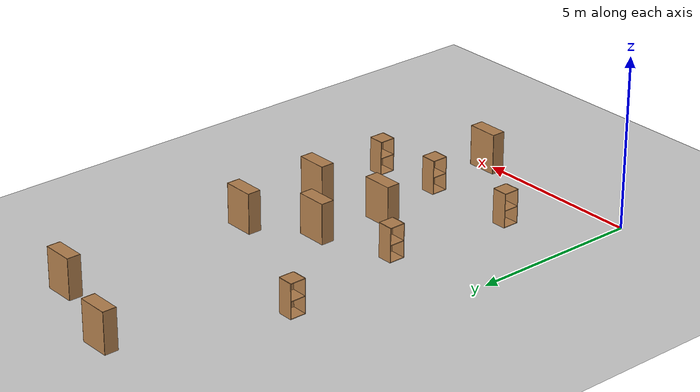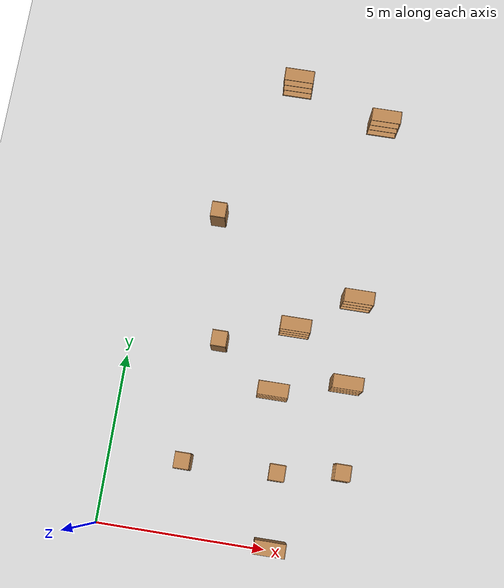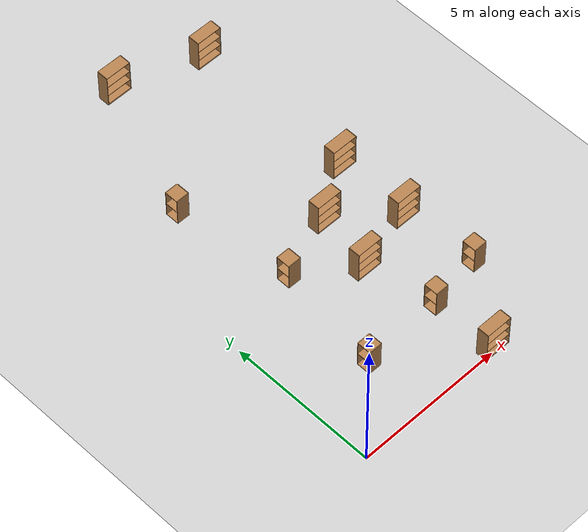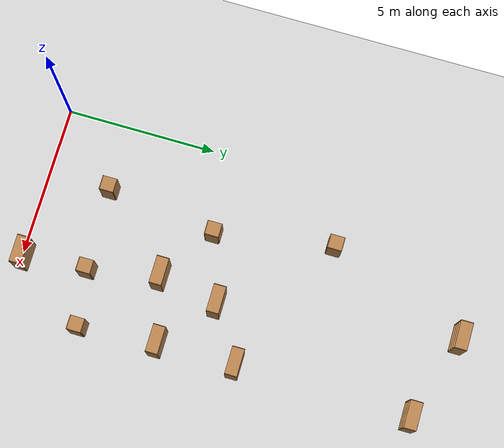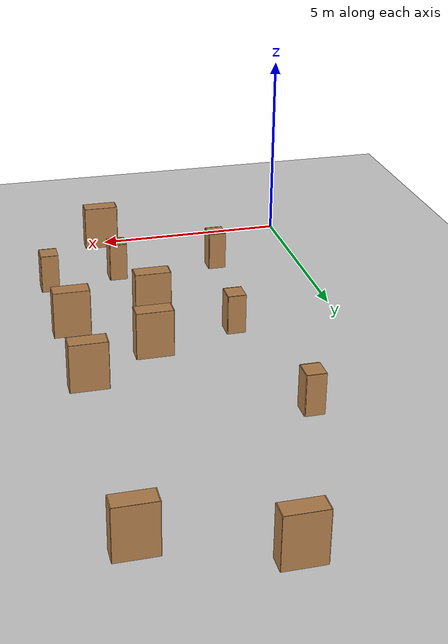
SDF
<sdf version="1.6">
 <world name="default">
  <model name="ground_plane">
   <static>1</static>
   <link name="link">
    <collision name="collision">
     <geometry><plane><normal>0 0 1</normal><size>100 100</size></plane></geometry>
     <surface><friction><ode><mu>100</mu><mu2>50</mu2></ode></friction></surface>
    </collision>
    <visual name="visual">
     <cast_shadows>0</cast_shadows>
     <geometry><plane><normal>0 0 1</normal><size>100 100</size></plane></geometry>
     <material>
      <script><uri>file://media/materials/scripts/gazebo.material</uri><name>Gazebo/Grey</name></script>
     </material>
    </visual>
   </link>
  </model>
  <model name="bookshelf_4">
   <static>1</static>
   <link name="link">
    <inertial><mass>1</mass></inertial>
    <collision name="back">
     <pose>0 0.005 0.6 0 -0 0</pose>
     <geometry><box><size>0.9 0.01 1.2</size></box></geometry>
    </collision>
    <visual name="visual1">
     <pose>0 0.005 0.6 0 -0 0</pose>
     <geometry><box><size>0.9 0.01 1.2</size></box></geometry>
     <material>
      <script><uri>file://media/materials/scripts/gazebo.material</uri><name>Gazebo/Wood</name></script>
     </material>
    </visual>
    <collision name="left_side">
     <pose>0.45 -0.195 0.6 0 -0 0</pose>
     <geometry><box><size>0.02 0.4 1.2</size></box></geometry>
    </collision>
    <visual name="visual2">
     <pose>0.45 -0.195 0.6 0 -0 0</pose>
     <geometry><box><size>0.02 0.4 1.2</size></box></geometry>
     <material>
      <script><uri>file://media/materials/scripts/gazebo.material</uri><name>Gazebo/Wood</name></script>
     </material>
    </visual>
    <collision name="right_side">
     <pose>-0.45 -0.195 0.6 0 -0 0</pose>
     <geometry><box><size>0.02 0.4 1.2</size></box></geometry>
    </collision>
    <visual name="visual3">
     <pose>-0.45 -0.195 0.6 0 -0 0</pose>
     <geometry><box><size>0.02 0.4 1.2</size></box></geometry>
     <material>
      <script><uri>file://media/materials/scripts/gazebo.material</uri><name>Gazebo/Wood</name></script>
     </material>
    </visual>
    <collision name="bottom">
     <pose>0 -0.195 0.03 0 -0 0</pose>
     <geometry><box><size>0.88 0.4 0.06</size></box></geometry>
    </collision>
    <visual name="visual4">
     <pose>0 -0.195 0.03 0 -0 0</pose>
     <geometry><box><size>0.88 0.4 0.06</size></box></geometry>
     <material>
      <script><uri>file://media/materials/scripts/gazebo.material</uri><name>Gazebo/Wood</name></script>
     </material>
    </visual>
    <collision name="top">
     <pose>0 -0.195 1.19 0 -0 0</pose>
     <geometry><box><size>0.88 0.4 0.02</size></box></geometry>
    </collision>
    <visual name="visual5">
     <pose>0 -0.195 1.19 0 -0 0</pose>
     <geometry><box><size>0.88 0.4 0.02</size></box></geometry>
     <material>
      <script><uri>file://media/materials/scripts/gazebo.material</uri><name>Gazebo/Wood</name></script>
     </material>
    </visual>
    <collision name="low_shelf">
     <pose>0 -0.195 0.43 0 -0 0</pose>
     <geometry><box><size>0.88 0.4 0.02</size></box></geometry>
    </collision>
    <visual name="visual6">
     <pose>0 -0.195 0.43 0 -0 0</pose>
     <geometry><box><size>0.88 0.4 0.02</size></box></geometry>
     <material>
      <script><uri>file://media/materials/scripts/gazebo.material</uri><name>Gazebo/Wood</name></script>
     </material>
    </visual>
    <collision name="high_shelf">
     <pose>0 -0.195 0.8 0 -0 0</pose>
     <geometry><box><size>0.88 0.4 0.02</size></box></geometry>
    </collision>
    <visual name="visual7">
     <pose>0 -0.195 0.8 0 -0 0</pose>
     <geometry><box><size>0.88 0.4 0.02</size></box></geometry>
     <material>
      <script><uri>file://media/materials/scripts/gazebo.material</uri><name>Gazebo/Wood</name></script>
     </material>
    </visual>
   </link>
   <pose>3.85039 14.4909 0 0 -0 0</pose>
  </model>
  <model name="bookshelf_5">
   <static>1</static>
   <link name="link">
    <inertial><mass>1</mass></inertial>
    <collision name="back">
     <pose>0 0.005 0.6 0 -0 0</pose>
     <geometry><box><size>0.9 0.01 1.2</size></box></geometry>
    </collision>
    <visual name="visual1">
     <pose>0 0.005 0.6 0 -0 0</pose>
     <geometry><box><size>0.9 0.01 1.2</size></box></geometry>
     <material>
      <script><uri>file://media/materials/scripts/gazebo.material</uri><name>Gazebo/Wood</name></script>
     </material>
    </visual>
    <collision name="left_side">
     <pose>0.45 -0.195 0.6 0 -0 0</pose>
     <geometry><box><size>0.02 0.4 1.2</size></box></geometry>
    </collision>
    <visual name="visual2">
     <pose>0.45 -0.195 0.6 0 -0 0</pose>
     <geometry><box><size>0.02 0.4 1.2</size></box></geometry>
     <material>
      <script><uri>file://media/materials/scripts/gazebo.material</uri><name>Gazebo/Wood</name></script>
     </material>
    </visual>
    <collision name="right_side">
     <pose>-0.45 -0.195 0.6 0 -0 0</pose>
     <geometry><box><size>0.02 0.4 1.2</size></box></geometry>
    </collision>
    <visual name="visual3">
     <pose>-0.45 -0.195 0.6 0 -0 0</pose>
     <geometry><box><size>0.02 0.4 1.2</size></box></geometry>
     <material>
      <script><uri>file://media/materials/scripts/gazebo.material</uri><name>Gazebo/Wood</name></script>
     </material>
    </visual>
    <collision name="bottom">
     <pose>0 -0.195 0.03 0 -0 0</pose>
     <geometry><box><size>0.88 0.4 0.06</size></box></geometry>
    </collision>
    <visual name="visual4">
     <pose>0 -0.195 0.03 0 -0 0</pose>
     <geometry><box><size>0.88 0.4 0.06</size></box></geometry>
     <material>
      <script><uri>file://media/materials/scripts/gazebo.material</uri><name>Gazebo/Wood</name></script>
     </material>
    </visual>
    <collision name="top">
     <pose>0 -0.195 1.19 0 -0 0</pose>
     <geometry><box><size>0.88 0.4 0.02</size></box></geometry>
    </collision>
    <visual name="visual5">
     <pose>0 -0.195 1.19 0 -0 0</pose>
     <geometry><box><size>0.88 0.4 0.02</size></box></geometry>
     <material>
      <script><uri>file://media/materials/scripts/gazebo.material</uri><name>Gazebo/Wood</name></script>
     </material>
    </visual>
    <collision name="low_shelf">
     <pose>0 -0.195 0.43 0 -0 0</pose>
     <geometry><box><size>0.88 0.4 0.02</size></box></geometry>
    </collision>
    <visual name="visual6">
     <pose>0 -0.195 0.43 0 -0 0</pose>
     <geometry><box><size>0.88 0.4 0.02</size></box></geometry>
     <material>
      <script><uri>file://media/materials/scripts/gazebo.material</uri><name>Gazebo/Wood</name></script>
     </material>
    </visual>
    <collision name="high_shelf">
     <pose>0 -0.195 0.8 0 -0 0</pose>
     <geometry><box><size>0.88 0.4 0.02</size></box></geometry>
    </collision>
    <visual name="visual7">
     <pose>0 -0.195 0.8 0 -0 0</pose>
     <geometry><box><size>0.88 0.4 0.02</size></box></geometry>
     <material>
      <script><uri>file://media/materials/scripts/gazebo.material</uri><name>Gazebo/Wood</name></script>
     </material>
    </visual>
   </link>
   <pose>6.68529 13.5954 0 0 -0 0</pose>
  </model>
  <model name="bookshelf_6">
   <static>1</static>
   <link name="link">
    <inertial><mass>1</mass></inertial>
    <collision name="back">
     <pose>0 0.005 0.6 0 -0 0</pose>
     <geometry><box><size>0.9 0.01 1.2</size></box></geometry>
    </collision>
    <visual name="visual1">
     <pose>0 0.005 0.6 0 -0 0</pose>
     <geometry><box><size>0.9 0.01 1.2</size></box></geometry>
     <material>
      <script><uri>file://media/materials/scripts/gazebo.material</uri><name>Gazebo/Wood</name></script>
     </material>
    </visual>
    <collision name="left_side">
     <pose>0.45 -0.195 0.6 0 -0 0</pose>
     <geometry><box><size>0.02 0.4 1.2</size></box></geometry>
    </collision>
    <visual name="visual2">
     <pose>0.45 -0.195 0.6 0 -0 0</pose>
     <geometry><box><size>0.02 0.4 1.2</size></box></geometry>
     <material>
      <script><uri>file://media/materials/scripts/gazebo.material</uri><name>Gazebo/Wood</name></script>
     </material>
    </visual>
    <collision name="right_side">
     <pose>-0.45 -0.195 0.6 0 -0 0</pose>
     <geometry><box><size>0.02 0.4 1.2</size></box></geometry>
    </collision>
    <visual name="visual3">
     <pose>-0.45 -0.195 0.6 0 -0 0</pose>
     <geometry><box><size>0.02 0.4 1.2</size></box></geometry>
     <material>
      <script><uri>file://media/materials/scripts/gazebo.material</uri><name>Gazebo/Wood</name></script>
     </material>
    </visual>
    <collision name="bottom">
     <pose>0 -0.195 0.03 0 -0 0</pose>
     <geometry><box><size>0.88 0.4 0.06</size></box></geometry>
    </collision>
    <visual name="visual4">
     <pose>0 -0.195 0.03 0 -0 0</pose>
     <geometry><box><size>0.88 0.4 0.06</size></box></geometry>
     <material>
      <script><uri>file://media/materials/scripts/gazebo.material</uri><name>Gazebo/Wood</name></script>
     </material>
    </visual>
    <collision name="top">
     <pose>0 -0.195 1.19 0 -0 0</pose>
     <geometry><box><size>0.88 0.4 0.02</size></box></geometry>
    </collision>
    <visual name="visual5">
     <pose>0 -0.195 1.19 0 -0 0</pose>
     <geometry><box><size>0.88 0.4 0.02</size></box></geometry>
     <material>
      <script><uri>file://media/materials/scripts/gazebo.material</uri><name>Gazebo/Wood</name></script>
     </material>
    </visual>
    <collision name="low_shelf">
     <pose>0 -0.195 0.43 0 -0 0</pose>
     <geometry><box><size>0.88 0.4 0.02</size></box></geometry>
    </collision>
    <visual name="visual6">
     <pose>0 -0.195 0.43 0 -0 0</pose>
     <geometry><box><size>0.88 0.4 0.02</size></box></geometry>
     <material>
      <script><uri>file://media/materials/scripts/gazebo.material</uri><name>Gazebo/Wood</name></script>
     </material>
    </visual>
    <collision name="high_shelf">
     <pose>0 -0.195 0.8 0 -0 0</pose>
     <geometry><box><size>0.88 0.4 0.02</size></box></geometry>
    </collision>
    <visual name="visual7">
     <pose>0 -0.195 0.8 0 -0 0</pose>
     <geometry><box><size>0.88 0.4 0.02</size></box></geometry>
     <material>
      <script><uri>file://media/materials/scripts/gazebo.material</uri><name>Gazebo/Wood</name></script>
     </material>
    </visual>
   </link>
   <pose>6.63156 7.85194 0 0 -0 0</pose>
  </model>
  <model name="bookshelf_7">
   <static>1</static>
   <link name="link">
    <inertial><mass>1</mass></inertial>
    <collision name="back">
     <pose>0 0.005 0.6 0 -0 0</pose>
     <geometry><box><size>0.9 0.01 1.2</size></box></geometry>
    </collision>
    <visual name="visual1">
     <pose>0 0.005 0.6 0 -0 0</pose>
     <geometry><box><size>0.9 0.01 1.2</size></box></geometry>
     <material>
      <script><uri>file://media/materials/scripts/gazebo.material</uri><name>Gazebo/Wood</name></script>
     </material>
    </visual>
    <collision name="left_side">
     <pose>0.45 -0.195 0.6 0 -0 0</pose>
     <geometry><box><size>0.02 0.4 1.2</size></box></geometry>
    </collision>
    <visual name="visual2">
     <pose>0.45 -0.195 0.6 0 -0 0</pose>
     <geometry><box><size>0.02 0.4 1.2</size></box></geometry>
     <material>
      <script><uri>file://media/materials/scripts/gazebo.material</uri><name>Gazebo/Wood</name></script>
     </material>
    </visual>
    <collision name="right_side">
     <pose>-0.45 -0.195 0.6 0 -0 0</pose>
     <geometry><box><size>0.02 0.4 1.2</size></box></geometry>
    </collision>
    <visual name="visual3">
     <pose>-0.45 -0.195 0.6 0 -0 0</pose>
     <geometry><box><size>0.02 0.4 1.2</size></box></geometry>
     <material>
      <script><uri>file://media/materials/scripts/gazebo.material</uri><name>Gazebo/Wood</name></script>
     </material>
    </visual>
    <collision name="bottom">
     <pose>0 -0.195 0.03 0 -0 0</pose>
     <geometry><box><size>0.88 0.4 0.06</size></box></geometry>
    </collision>
    <visual name="visual4">
     <pose>0 -0.195 0.03 0 -0 0</pose>
     <geometry><box><size>0.88 0.4 0.06</size></box></geometry>
     <material>
      <script><uri>file://media/materials/scripts/gazebo.material</uri><name>Gazebo/Wood</name></script>
     </material>
    </visual>
    <collision name="top">
     <pose>0 -0.195 1.19 0 -0 0</pose>
     <geometry><box><size>0.88 0.4 0.02</size></box></geometry>
    </collision>
    <visual name="visual5">
     <pose>0 -0.195 1.19 0 -0 0</pose>
     <geometry><box><size>0.88 0.4 0.02</size></box></geometry>
     <material>
      <script><uri>file://media/materials/scripts/gazebo.material</uri><name>Gazebo/Wood</name></script>
     </material>
    </visual>
    <collision name="low_shelf">
     <pose>0 -0.195 0.43 0 -0 0</pose>
     <geometry><box><size>0.88 0.4 0.02</size></box></geometry>
    </collision>
    <visual name="visual6">
     <pose>0 -0.195 0.43 0 -0 0</pose>
     <geometry><box><size>0.88 0.4 0.02</size></box></geometry>
     <material>
      <script><uri>file://media/materials/scripts/gazebo.material</uri><name>Gazebo/Wood</name></script>
     </material>
    </visual>
    <collision name="high_shelf">
     <pose>0 -0.195 0.8 0 -0 0</pose>
     <geometry><box><size>0.88 0.4 0.02</size></box></geometry>
    </collision>
    <visual name="visual7">
     <pose>0 -0.195 0.8 0 -0 0</pose>
     <geometry><box><size>0.88 0.4 0.02</size></box></geometry>
     <material>
      <script><uri>file://media/materials/scripts/gazebo.material</uri><name>Gazebo/Wood</name></script>
     </material>
    </visual>
   </link>
   <pose>4.90371 6.74555 0 0 -0 0</pose>
  </model>
  <model name="bookshelf_8">
   <static>1</static>
   <link name="link">
    <inertial><mass>1</mass></inertial>
    <collision name="back">
     <pose>0 0.005 0.6 0 -0 0</pose>
     <geometry><box><size>0.9 0.01 1.2</size></box></geometry>
    </collision>
    <visual name="visual1">
     <pose>0 0.005 0.6 0 -0 0</pose>
     <geometry><box><size>0.9 0.01 1.2</size></box></geometry>
     <material>
      <script><uri>file://media/materials/scripts/gazebo.material</uri><name>Gazebo/Wood</name></script>
     </material>
    </visual>
    <collision name="left_side">
     <pose>0.45 -0.195 0.6 0 -0 0</pose>
     <geometry><box><size>0.02 0.4 1.2</size></box></geometry>
    </collision>
    <visual name="visual2">
     <pose>0.45 -0.195 0.6 0 -0 0</pose>
     <geometry><box><size>0.02 0.4 1.2</size></box></geometry>
     <material>
      <script><uri>file://media/materials/scripts/gazebo.material</uri><name>Gazebo/Wood</name></script>
     </material>
    </visual>
    <collision name="right_side">
     <pose>-0.45 -0.195 0.6 0 -0 0</pose>
     <geometry><box><size>0.02 0.4 1.2</size></box></geometry>
    </collision>
    <visual name="visual3">
     <pose>-0.45 -0.195 0.6 0 -0 0</pose>
     <geometry><box><size>0.02 0.4 1.2</size></box></geometry>
     <material>
      <script><uri>file://media/materials/scripts/gazebo.material</uri><name>Gazebo/Wood</name></script>
     </material>
    </visual>
    <collision name="bottom">
     <pose>0 -0.195 0.03 0 -0 0</pose>
     <geometry><box><size>0.88 0.4 0.06</size></box></geometry>
    </collision>
    <visual name="visual4">
     <pose>0 -0.195 0.03 0 -0 0</pose>
     <geometry><box><size>0.88 0.4 0.06</size></box></geometry>
     <material>
      <script><uri>file://media/materials/scripts/gazebo.material</uri><name>Gazebo/Wood</name></script>
     </material>
    </visual>
    <collision name="top">
     <pose>0 -0.195 1.19 0 -0 0</pose>
     <geometry><box><size>0.88 0.4 0.02</size></box></geometry>
    </collision>
    <visual name="visual5">
     <pose>0 -0.195 1.19 0 -0 0</pose>
     <geometry><box><size>0.88 0.4 0.02</size></box></geometry>
     <material>
      <script><uri>file://media/materials/scripts/gazebo.material</uri><name>Gazebo/Wood</name></script>
     </material>
    </visual>
    <collision name="low_shelf">
     <pose>0 -0.195 0.43 0 -0 0</pose>
     <geometry><box><size>0.88 0.4 0.02</size></box></geometry>
    </collision>
    <visual name="visual6">
     <pose>0 -0.195 0.43 0 -0 0</pose>
     <geometry><box><size>0.88 0.4 0.02</size></box></geometry>
     <material>
      <script><uri>file://media/materials/scripts/gazebo.material</uri><name>Gazebo/Wood</name></script>
     </material>
    </visual>
    <collision name="high_shelf">
     <pose>0 -0.195 0.8 0 -0 0</pose>
     <geometry><box><size>0.88 0.4 0.02</size></box></geometry>
    </collision>
    <visual name="visual7">
     <pose>0 -0.195 0.8 0 -0 0</pose>
     <geometry><box><size>0.88 0.4 0.02</size></box></geometry>
     <material>
      <script><uri>file://media/materials/scripts/gazebo.material</uri><name>Gazebo/Wood</name></script>
     </material>
    </visual>
   </link>
   <pose>6.652 5.28748 0 0 -0 0</pose>
  </model>
  <model name="bookshelf_9">
   <static>1</static>
   <link name="link">
    <inertial><mass>1</mass></inertial>
    <collision name="back">
     <pose>0 0.005 0.6 0 -0 0</pose>
     <geometry><box><size>0.9 0.01 1.2</size></box></geometry>
    </collision>
    <visual name="visual1">
     <pose>0 0.005 0.6 0 -0 0</pose>
     <geometry><box><size>0.9 0.01 1.2</size></box></geometry>
     <material>
      <script><uri>file://media/materials/scripts/gazebo.material</uri><name>Gazebo/Wood</name></script>
     </material>
    </visual>
    <collision name="left_side">
     <pose>0.45 -0.195 0.6 0 -0 0</pose>
     <geometry><box><size>0.02 0.4 1.2</size></box></geometry>
    </collision>
    <visual name="visual2">
     <pose>0.45 -0.195 0.6 0 -0 0</pose>
     <geometry><box><size>0.02 0.4 1.2</size></box></geometry>
     <material>
      <script><uri>file://media/materials/scripts/gazebo.material</uri><name>Gazebo/Wood</name></script>
     </material>
    </visual>
    <collision name="right_side">
     <pose>-0.45 -0.195 0.6 0 -0 0</pose>
     <geometry><box><size>0.02 0.4 1.2</size></box></geometry>
    </collision>
    <visual name="visual3">
     <pose>-0.45 -0.195 0.6 0 -0 0</pose>
     <geometry><box><size>0.02 0.4 1.2</size></box></geometry>
     <material>
      <script><uri>file://media/materials/scripts/gazebo.material</uri><name>Gazebo/Wood</name></script>
     </material>
    </visual>
    <collision name="bottom">
     <pose>0 -0.195 0.03 0 -0 0</pose>
     <geometry><box><size>0.88 0.4 0.06</size></box></geometry>
    </collision>
    <visual name="visual4">
     <pose>0 -0.195 0.03 0 -0 0</pose>
     <geometry><box><size>0.88 0.4 0.06</size></box></geometry>
     <material>
      <script><uri>file://media/materials/scripts/gazebo.material</uri><name>Gazebo/Wood</name></script>
     </material>
    </visual>
    <collision name="top">
     <pose>0 -0.195 1.19 0 -0 0</pose>
     <geometry><box><size>0.88 0.4 0.02</size></box></geometry>
    </collision>
    <visual name="visual5">
     <pose>0 -0.195 1.19 0 -0 0</pose>
     <geometry><box><size>0.88 0.4 0.02</size></box></geometry>
     <material>
      <script><uri>file://media/materials/scripts/gazebo.material</uri><name>Gazebo/Wood</name></script>
     </material>
    </visual>
    <collision name="low_shelf">
     <pose>0 -0.195 0.43 0 -0 0</pose>
     <geometry><box><size>0.88 0.4 0.02</size></box></geometry>
    </collision>
    <visual name="visual6">
     <pose>0 -0.195 0.43 0 -0 0</pose>
     <geometry><box><size>0.88 0.4 0.02</size></box></geometry>
     <material>
      <script><uri>file://media/materials/scripts/gazebo.material</uri><name>Gazebo/Wood</name></script>
     </material>
    </visual>
    <collision name="high_shelf">
     <pose>0 -0.195 0.8 0 -0 0</pose>
     <geometry><box><size>0.88 0.4 0.02</size></box></geometry>
    </collision>
    <visual name="visual7">
     <pose>0 -0.195 0.8 0 -0 0</pose>
     <geometry><box><size>0.88 0.4 0.02</size></box></geometry>
     <material>
      <script><uri>file://media/materials/scripts/gazebo.material</uri><name>Gazebo/Wood</name></script>
     </material>
    </visual>
   </link>
   <pose>4.53912 4.75708 0 0 -0 0</pose>
  </model>
  <model name="cabinet">
   <static>1</static>
   <link name="cabinet_bottom_plate">
    <inertial>
     <pose>0 0 -1 0 -0 0</pose>
     <inertia><ixx>2.05</ixx><ixy>0</ixy><ixz>0</ixz><iyy>2.05</iyy><iyz>0</iyz><izz>2.05</izz></inertia>
     <mass>25</mass>
    </inertial>
    <collision name="cabinet_bottom_plate_geom">
     <pose>0 0 0.01 0 -0 0</pose>
     <geometry><box><size>0.45 0.45 0.02</size></box></geometry>
    </collision>
    <visual name="cabinet_bottom_plate_geom_visual">
     <pose>0 0 0.01 0 -0 0</pose>
     <geometry><box><size>0.45 0.45 0.02</size></box></geometry>
     <material>
      <script><uri>file://media/materials/scripts/gazebo.material</uri><name>Gazebo/Wood</name></script>
     </material>
    </visual>
    <collision name="cabinet_bottom_plate_geom_cabinet_back_plate">
     <pose>0.235 0 0.51 0 -0 0</pose>
     <geometry><box><size>0.02 0.45 1.02</size></box></geometry>
    </collision>
    <visual name="cabinet_bottom_plate_geom_cabinet_back_plate_visual">
     <pose>0.235 0 0.51 0 -0 0</pose>
     <geometry><box><size>0.02 0.45 1.02</size></box></geometry>
     <material>
      <script><uri>file://media/materials/scripts/gazebo.material</uri><name>Gazebo/Wood</name></script>
     </material>
    </visual>
    <collision name="cabinet_bottom_plate_geom_cabinet_left_plate">
     <pose>0 0.235 0.51 0 -0 0</pose>
     <geometry><box><size>0.45 0.02 1.02</size></box></geometry>
    </collision>
    <visual name="cabinet_bottom_plate_geom_cabinet_left_plate_visual">
     <pose>0 0.235 0.51 0 -0 0</pose>
     <geometry><box><size>0.45 0.02 1.02</size></box></geometry>
     <material>
      <script><uri>file://media/materials/scripts/gazebo.material</uri><name>Gazebo/Wood</name></script>
     </material>
    </visual>
    <collision name="cabinet_bottom_plate_geom_cabinet_middle_plate">
     <pose>0 0 0.51 0 -0 0</pose>
     <geometry><box><size>0.45 0.45 0.02</size></box></geometry>
    </collision>
    <visual name="cabinet_bottom_plate_geom_cabinet_middle_plate_visual">
     <pose>0 0 0.51 0 -0 0</pose>
     <geometry><box><size>0.45 0.45 0.02</size></box></geometry>
     <material>
      <script><uri>file://media/materials/scripts/gazebo.material</uri><name>Gazebo/Wood</name></script>
     </material>
    </visual>
    <collision name="cabinet_bottom_plate_geom_cabinet_right_plate">
     <pose>0 -0.235 0.51 0 -0 0</pose>
     <geometry><box><size>0.45 0.02 1.02</size></box></geometry>
    </collision>
    <visual name="cabinet_bottom_plate_geom_cabinet_right_plate_visual">
     <pose>0 -0.235 0.51 0 -0 0</pose>
     <geometry><box><size>0.45 0.02 1.02</size></box></geometry>
     <material>
      <script><uri>file://media/materials/scripts/gazebo.material</uri><name>Gazebo/Wood</name></script>
     </material>
    </visual>
    <collision name="cabinet_bottom_plate_geom_cabinet_top_plate">
     <pose>0 0 1.01 0 -0 0</pose>
     <geometry><box><size>0.45 0.45 0.02</size></box></geometry>
    </collision>
    <visual name="cabinet_bottom_plate_geom_cabinet_top_plate_visual">
     <pose>0 0 1.01 0 -0 0</pose>
     <geometry><box><size>0.45 0.45 0.02</size></box></geometry>
     <material>
      <script><uri>file://media/materials/scripts/gazebo.material</uri><name>Gazebo/Wood</name></script>
     </material>
    </visual>
   </link>
   <pose>6.87325 2.52743 0 0 -0 0</pose>
  </model>
  <model name="cabinet_0">
   <static>1</static>
   <link name="cabinet_bottom_plate">
    <inertial>
     <pose>0 0 -1 0 -0 0</pose>
     <inertia><ixx>2.05</ixx><ixy>0</ixy><ixz>0</ixz><iyy>2.05</iyy><iyz>0</iyz><izz>2.05</izz></inertia>
     <mass>25</mass>
    </inertial>
    <collision name="cabinet_bottom_plate_geom">
     <pose>0 0 0.01 0 -0 0</pose>
     <geometry><box><size>0.45 0.45 0.02</size></box></geometry>
    </collision>
    <visual name="cabinet_bottom_plate_geom_visual">
     <pose>0 0 0.01 0 -0 0</pose>
     <geometry><box><size>0.45 0.45 0.02</size></box></geometry>
     <material>
      <script><uri>file://media/materials/scripts/gazebo.material</uri><name>Gazebo/Wood</name></script>
     </material>
    </visual>
    <collision name="cabinet_bottom_plate_geom_cabinet_back_plate">
     <pose>0.235 0 0.51 0 -0 0</pose>
     <geometry><box><size>0.02 0.45 1.02</size></box></geometry>
    </collision>
    <visual name="cabinet_bottom_plate_geom_cabinet_back_plate_visual">
     <pose>0.235 0 0.51 0 -0 0</pose>
     <geometry><box><size>0.02 0.45 1.02</size></box></geometry>
     <material>
      <script><uri>file://media/materials/scripts/gazebo.material</uri><name>Gazebo/Wood</name></script>
     </material>
    </visual>
    <collision name="cabinet_bottom_plate_geom_cabinet_left_plate">
     <pose>0 0.235 0.51 0 -0 0</pose>
     <geometry><box><size>0.45 0.02 1.02</size></box></geometry>
    </collision>
    <visual name="cabinet_bottom_plate_geom_cabinet_left_plate_visual">
     <pose>0 0.235 0.51 0 -0 0</pose>
     <geometry><box><size>0.45 0.02 1.02</size></box></geometry>
     <material>
      <script><uri>file://media/materials/scripts/gazebo.material</uri><name>Gazebo/Wood</name></script>
     </material>
    </visual>
    <collision name="cabinet_bottom_plate_geom_cabinet_middle_plate">
     <pose>0 0 0.51 0 -0 0</pose>
     <geometry><box><size>0.45 0.45 0.02</size></box></geometry>
    </collision>
    <visual name="cabinet_bottom_plate_geom_cabinet_middle_plate_visual">
     <pose>0 0 0.51 0 -0 0</pose>
     <geometry><box><size>0.45 0.45 0.02</size></box></geometry>
     <material>
      <script><uri>file://media/materials/scripts/gazebo.material</uri><name>Gazebo/Wood</name></script>
     </material>
    </visual>
    <collision name="cabinet_bottom_plate_geom_cabinet_right_plate">
     <pose>0 -0.235 0.51 0 -0 0</pose>
     <geometry><box><size>0.45 0.02 1.02</size></box></geometry>
    </collision>
    <visual name="cabinet_bottom_plate_geom_cabinet_right_plate_visual">
     <pose>0 -0.235 0.51 0 -0 0</pose>
     <geometry><box><size>0.45 0.02 1.02</size></box></geometry>
     <material>
      <script><uri>file://media/materials/scripts/gazebo.material</uri><name>Gazebo/Wood</name></script>
     </material>
    </visual>
    <collision name="cabinet_bottom_plate_geom_cabinet_top_plate">
     <pose>0 0 1.01 0 -0 0</pose>
     <geometry><box><size>0.45 0.45 0.02</size></box></geometry>
    </collision>
    <visual name="cabinet_bottom_plate_geom_cabinet_top_plate_visual">
     <pose>0 0 1.01 0 -0 0</pose>
     <geometry><box><size>0.45 0.45 0.02</size></box></geometry>
     <material>
      <script><uri>file://media/materials/scripts/gazebo.material</uri><name>Gazebo/Wood</name></script>
     </material>
    </visual>
   </link>
   <pose>2.26177 2.14192 0 0 -0 0</pose>
  </model>
  <model name="cabinet_1">
   <static>1</static>
   <link name="cabinet_bottom_plate">
    <inertial>
     <pose>0 0 -1 0 -0 0</pose>
     <inertia><ixx>2.05</ixx><ixy>0</ixy><ixz>0</ixz><iyy>2.05</iyy><iyz>0</iyz><izz>2.05</izz></inertia>
     <mass>25</mass>
    </inertial>
    <collision name="cabinet_bottom_plate_geom">
     <pose>0 0 0.01 0 -0 0</pose>
     <geometry><box><size>0.45 0.45 0.02</size></box></geometry>
    </collision>
    <visual name="cabinet_bottom_plate_geom_visual">
     <pose>0 0 0.01 0 -0 0</pose>
     <geometry><box><size>0.45 0.45 0.02</size></box></geometry>
     <material>
      <script><uri>file://media/materials/scripts/gazebo.material</uri><name>Gazebo/Wood</name></script>
     </material>
    </visual>
    <collision name="cabinet_bottom_plate_geom_cabinet_back_plate">
     <pose>0.235 0 0.51 0 -0 0</pose>
     <geometry><box><size>0.02 0.45 1.02</size></box></geometry>
    </collision>
    <visual name="cabinet_bottom_plate_geom_cabinet_back_plate_visual">
     <pose>0.235 0 0.51 0 -0 0</pose>
     <geometry><box><size>0.02 0.45 1.02</size></box></geometry>
     <material>
      <script><uri>file://media/materials/scripts/gazebo.material</uri><name>Gazebo/Wood</name></script>
     </material>
    </visual>
    <collision name="cabinet_bottom_plate_geom_cabinet_left_plate">
     <pose>0 0.235 0.51 0 -0 0</pose>
     <geometry><box><size>0.45 0.02 1.02</size></box></geometry>
    </collision>
    <visual name="cabinet_bottom_plate_geom_cabinet_left_plate_visual">
     <pose>0 0.235 0.51 0 -0 0</pose>
     <geometry><box><size>0.45 0.02 1.02</size></box></geometry>
     <material>
      <script><uri>file://media/materials/scripts/gazebo.material</uri><name>Gazebo/Wood</name></script>
     </material>
    </visual>
    <collision name="cabinet_bottom_plate_geom_cabinet_middle_plate">
     <pose>0 0 0.51 0 -0 0</pose>
     <geometry><box><size>0.45 0.45 0.02</size></box></geometry>
    </collision>
    <visual name="cabinet_bottom_plate_geom_cabinet_middle_plate_visual">
     <pose>0 0 0.51 0 -0 0</pose>
     <geometry><box><size>0.45 0.45 0.02</size></box></geometry>
     <material>
      <script><uri>file://media/materials/scripts/gazebo.material</uri><name>Gazebo/Wood</name></script>
     </material>
    </visual>
    <collision name="cabinet_bottom_plate_geom_cabinet_right_plate">
     <pose>0 -0.235 0.51 0 -0 0</pose>
     <geometry><box><size>0.45 0.02 1.02</size></box></geometry>
    </collision>
    <visual name="cabinet_bottom_plate_geom_cabinet_right_plate_visual">
     <pose>0 -0.235 0.51 0 -0 0</pose>
     <geometry><box><size>0.45 0.02 1.02</size></box></geometry>
     <material>
      <script><uri>file://media/materials/scripts/gazebo.material</uri><name>Gazebo/Wood</name></script>
     </material>
    </visual>
    <collision name="cabinet_bottom_plate_geom_cabinet_top_plate">
     <pose>0 0 1.01 0 -0 0</pose>
     <geometry><box><size>0.45 0.45 0.02</size></box></geometry>
    </collision>
    <visual name="cabinet_bottom_plate_geom_cabinet_top_plate_visual">
     <pose>0 0 1.01 0 -0 0</pose>
     <geometry><box><size>0.45 0.45 0.02</size></box></geometry>
     <material>
      <script><uri>file://media/materials/scripts/gazebo.material</uri><name>Gazebo/Wood</name></script>
     </material>
    </visual>
   </link>
   <pose>2.06749 9.69828 0 0 -0 0</pose>
  </model>
  <model name="cabinet_2">
   <static>1</static>
   <link name="cabinet_bottom_plate">
    <inertial>
     <pose>0 0 -1 0 -0 0</pose>
     <inertia><ixx>2.05</ixx><ixy>0</ixy><ixz>0</ixz><iyy>2.05</iyy><iyz>0</iyz><izz>2.05</izz></inertia>
     <mass>25</mass>
    </inertial>
    <collision name="cabinet_bottom_plate_geom">
     <pose>0 0 0.01 0 -0 0</pose>
     <geometry><box><size>0.45 0.45 0.02</size></box></geometry>
    </collision>
    <visual name="cabinet_bottom_plate_geom_visual">
     <pose>0 0 0.01 0 -0 0</pose>
     <geometry><box><size>0.45 0.45 0.02</size></box></geometry>
     <material>
      <script><uri>file://media/materials/scripts/gazebo.material</uri><name>Gazebo/Wood</name></script>
     </material>
    </visual>
    <collision name="cabinet_bottom_plate_geom_cabinet_back_plate">
     <pose>0.235 0 0.51 0 -0 0</pose>
     <geometry><box><size>0.02 0.45 1.02</size></box></geometry>
    </collision>
    <visual name="cabinet_bottom_plate_geom_cabinet_back_plate_visual">
     <pose>0.235 0 0.51 0 -0 0</pose>
     <geometry><box><size>0.02 0.45 1.02</size></box></geometry>
     <material>
      <script><uri>file://media/materials/scripts/gazebo.material</uri><name>Gazebo/Wood</name></script>
     </material>
    </visual>
    <collision name="cabinet_bottom_plate_geom_cabinet_left_plate">
     <pose>0 0.235 0.51 0 -0 0</pose>
     <geometry><box><size>0.45 0.02 1.02</size></box></geometry>
    </collision>
    <visual name="cabinet_bottom_plate_geom_cabinet_left_plate_visual">
     <pose>0 0.235 0.51 0 -0 0</pose>
     <geometry><box><size>0.45 0.02 1.02</size></box></geometry>
     <material>
      <script><uri>file://media/materials/scripts/gazebo.material</uri><name>Gazebo/Wood</name></script>
     </material>
    </visual>
    <collision name="cabinet_bottom_plate_geom_cabinet_middle_plate">
     <pose>0 0 0.51 0 -0 0</pose>
     <geometry><box><size>0.45 0.45 0.02</size></box></geometry>
    </collision>
    <visual name="cabinet_bottom_plate_geom_cabinet_middle_plate_visual">
     <pose>0 0 0.51 0 -0 0</pose>
     <geometry><box><size>0.45 0.45 0.02</size></box></geometry>
     <material>
      <script><uri>file://media/materials/scripts/gazebo.material</uri><name>Gazebo/Wood</name></script>
     </material>
    </visual>
    <collision name="cabinet_bottom_plate_geom_cabinet_right_plate">
     <pose>0 -0.235 0.51 0 -0 0</pose>
     <geometry><box><size>0.45 0.02 1.02</size></box></geometry>
    </collision>
    <visual name="cabinet_bottom_plate_geom_cabinet_right_plate_visual">
     <pose>0 -0.235 0.51 0 -0 0</pose>
     <geometry><box><size>0.45 0.02 1.02</size></box></geometry>
     <material>
      <script><uri>file://media/materials/scripts/gazebo.material</uri><name>Gazebo/Wood</name></script>
     </material>
    </visual>
    <collision name="cabinet_bottom_plate_geom_cabinet_top_plate">
     <pose>0 0 1.01 0 -0 0</pose>
     <geometry><box><size>0.45 0.45 0.02</size></box></geometry>
    </collision>
    <visual name="cabinet_bottom_plate_geom_cabinet_top_plate_visual">
     <pose>0 0 1.01 0 -0 0</pose>
     <geometry><box><size>0.45 0.45 0.02</size></box></geometry>
     <material>
      <script><uri>file://media/materials/scripts/gazebo.material</uri><name>Gazebo/Wood</name></script>
     </material>
    </visual>
   </link>
   <pose>5.01046 2.23203 0 0 -0 0</pose>
  </model>
  <model name="cabinet_3">
   <static>1</static>
   <link name="cabinet_bottom_plate">
    <inertial>
     <pose>0 0 -1 0 -0 0</pose>
     <inertia><ixx>2.05</ixx><ixy>0</ixy><ixz>0</ixz><iyy>2.05</iyy><iyz>0</iyz><izz>2.05</izz></inertia>
     <mass>25</mass>
    </inertial>
    <collision name="cabinet_bottom_plate_geom">
     <pose>0 0 0.01 0 -0 0</pose>
     <geometry><box><size>0.45 0.45 0.02</size></box></geometry>
    </collision>
    <visual name="cabinet_bottom_plate_geom_visual">
     <pose>0 0 0.01 0 -0 0</pose>
     <geometry><box><size>0.45 0.45 0.02</size></box></geometry>
     <material>
      <script><uri>file://media/materials/scripts/gazebo.material</uri><name>Gazebo/Wood</name></script>
     </material>
    </visual>
    <collision name="cabinet_bottom_plate_geom_cabinet_back_plate">
     <pose>0.235 0 0.51 0 -0 0</pose>
     <geometry><box><size>0.02 0.45 1.02</size></box></geometry>
    </collision>
    <visual name="cabinet_bottom_plate_geom_cabinet_back_plate_visual">
     <pose>0.235 0 0.51 0 -0 0</pose>
     <geometry><box><size>0.02 0.45 1.02</size></box></geometry>
     <material>
      <script><uri>file://media/materials/scripts/gazebo.material</uri><name>Gazebo/Wood</name></script>
     </material>
    </visual>
    <collision name="cabinet_bottom_plate_geom_cabinet_left_plate">
     <pose>0 0.235 0.51 0 -0 0</pose>
     <geometry><box><size>0.45 0.02 1.02</size></box></geometry>
    </collision>
    <visual name="cabinet_bottom_plate_geom_cabinet_left_plate_visual">
     <pose>0 0.235 0.51 0 -0 0</pose>
     <geometry><box><size>0.45 0.02 1.02</size></box></geometry>
     <material>
      <script><uri>file://media/materials/scripts/gazebo.material</uri><name>Gazebo/Wood</name></script>
     </material>
    </visual>
    <collision name="cabinet_bottom_plate_geom_cabinet_middle_plate">
     <pose>0 0 0.51 0 -0 0</pose>
     <geometry><box><size>0.45 0.45 0.02</size></box></geometry>
    </collision>
    <visual name="cabinet_bottom_plate_geom_cabinet_middle_plate_visual">
     <pose>0 0 0.51 0 -0 0</pose>
     <geometry><box><size>0.45 0.45 0.02</size></box></geometry>
     <material>
      <script><uri>file://media/materials/scripts/gazebo.material</uri><name>Gazebo/Wood</name></script>
     </material>
    </visual>
    <collision name="cabinet_bottom_plate_geom_cabinet_right_plate">
     <pose>0 -0.235 0.51 0 -0 0</pose>
     <geometry><box><size>0.45 0.02 1.02</size></box></geometry>
    </collision>
    <visual name="cabinet_bottom_plate_geom_cabinet_right_plate_visual">
     <pose>0 -0.235 0.51 0 -0 0</pose>
     <geometry><box><size>0.45 0.02 1.02</size></box></geometry>
     <material>
      <script><uri>file://media/materials/scripts/gazebo.material</uri><name>Gazebo/Wood</name></script>
     </material>
    </visual>
    <collision name="cabinet_bottom_plate_geom_cabinet_top_plate">
     <pose>0 0 1.01 0 -0 0</pose>
     <geometry><box><size>0.45 0.45 0.02</size></box></geometry>
    </collision>
    <visual name="cabinet_bottom_plate_geom_cabinet_top_plate_visual">
     <pose>0 0 1.01 0 -0 0</pose>
     <geometry><box><size>0.45 0.45 0.02</size></box></geometry>
     <material>
      <script><uri>file://media/materials/scripts/gazebo.material</uri><name>Gazebo/Wood</name></script>
     </material>
    </visual>
   </link>
   <pose>2.73279 5.81149 0 0 -0 0</pose>
  </model>
  <model name="bookshelf_12">
   <static>1</static>
   <link name="link">
    <inertial><mass>1</mass></inertial>
    <collision name="back">
     <pose>0 0.005 0.6 0 -0 0</pose>
     <geometry><box><size>0.9 0.01 1.2</size></box></geometry>
    </collision>
    <visual name="visual1">
     <pose>0 0.005 0.6 0 -0 0</pose>
     <geometry><box><size>0.9 0.01 1.2</size></box></geometry>
     <material>
      <script><uri>file://media/materials/scripts/gazebo.material</uri><name>Gazebo/Wood</name></script>
     </material>
    </visual>
    <collision name="left_side">
     <pose>0.45 -0.195 0.6 0 -0 0</pose>
     <geometry><box><size>0.02 0.4 1.2</size></box></geometry>
    </collision>
    <visual name="visual2">
     <pose>0.45 -0.195 0.6 0 -0 0</pose>
     <geometry><box><size>0.02 0.4 1.2</size></box></geometry>
     <material>
      <script><uri>file://media/materials/scripts/gazebo.material</uri><name>Gazebo/Wood</name></script>
     </material>
    </visual>
    <collision name="right_side">
     <pose>-0.45 -0.195 0.6 0 -0 0</pose>
     <geometry><box><size>0.02 0.4 1.2</size></box></geometry>
    </collision>
    <visual name="visual3">
     <pose>-0.45 -0.195 0.6 0 -0 0</pose>
     <geometry><box><size>0.02 0.4 1.2</size></box></geometry>
     <material>
      <script><uri>file://media/materials/scripts/gazebo.material</uri><name>Gazebo/Wood</name></script>
     </material>
    </visual>
    <collision name="bottom">
     <pose>0 -0.195 0.03 0 -0 0</pose>
     <geometry><box><size>0.88 0.4 0.06</size></box></geometry>
    </collision>
    <visual name="visual4">
     <pose>0 -0.195 0.03 0 -0 0</pose>
     <geometry><box><size>0.88 0.4 0.06</size></box></geometry>
     <material>
      <script><uri>file://media/materials/scripts/gazebo.material</uri><name>Gazebo/Wood</name></script>
     </material>
    </visual>
    <collision name="top">
     <pose>0 -0.195 1.19 0 -0 0</pose>
     <geometry><box><size>0.88 0.4 0.02</size></box></geometry>
    </collision>
    <visual name="visual5">
     <pose>0 -0.195 1.19 0 -0 0</pose>
     <geometry><box><size>0.88 0.4 0.02</size></box></geometry>
     <material>
      <script><uri>file://media/materials/scripts/gazebo.material</uri><name>Gazebo/Wood</name></script>
     </material>
    </visual>
    <collision name="low_shelf">
     <pose>0 -0.195 0.43 0 -0 0</pose>
     <geometry><box><size>0.88 0.4 0.02</size></box></geometry>
    </collision>
    <visual name="visual6">
     <pose>0 -0.195 0.43 0 -0 0</pose>
     <geometry><box><size>0.88 0.4 0.02</size></box></geometry>
     <material>
      <script><uri>file://media/materials/scripts/gazebo.material</uri><name>Gazebo/Wood</name></script>
     </material>
    </visual>
    <collision name="high_shelf">
     <pose>0 -0.195 0.8 0 -0 0</pose>
     <geometry><box><size>0.88 0.4 0.02</size></box></geometry>
    </collision>
    <visual name="visual7">
     <pose>0 -0.195 0.8 0 -0 0</pose>
     <geometry><box><size>0.88 0.4 0.02</size></box></geometry>
     <material>
      <script><uri>file://media/materials/scripts/gazebo.material</uri><name>Gazebo/Wood</name></script>
     </material>
    </visual>
   </link>
   <pose>5.12254 0.309932 0 0 -0 0</pose>
  </model>
 </world>
</sdf>
